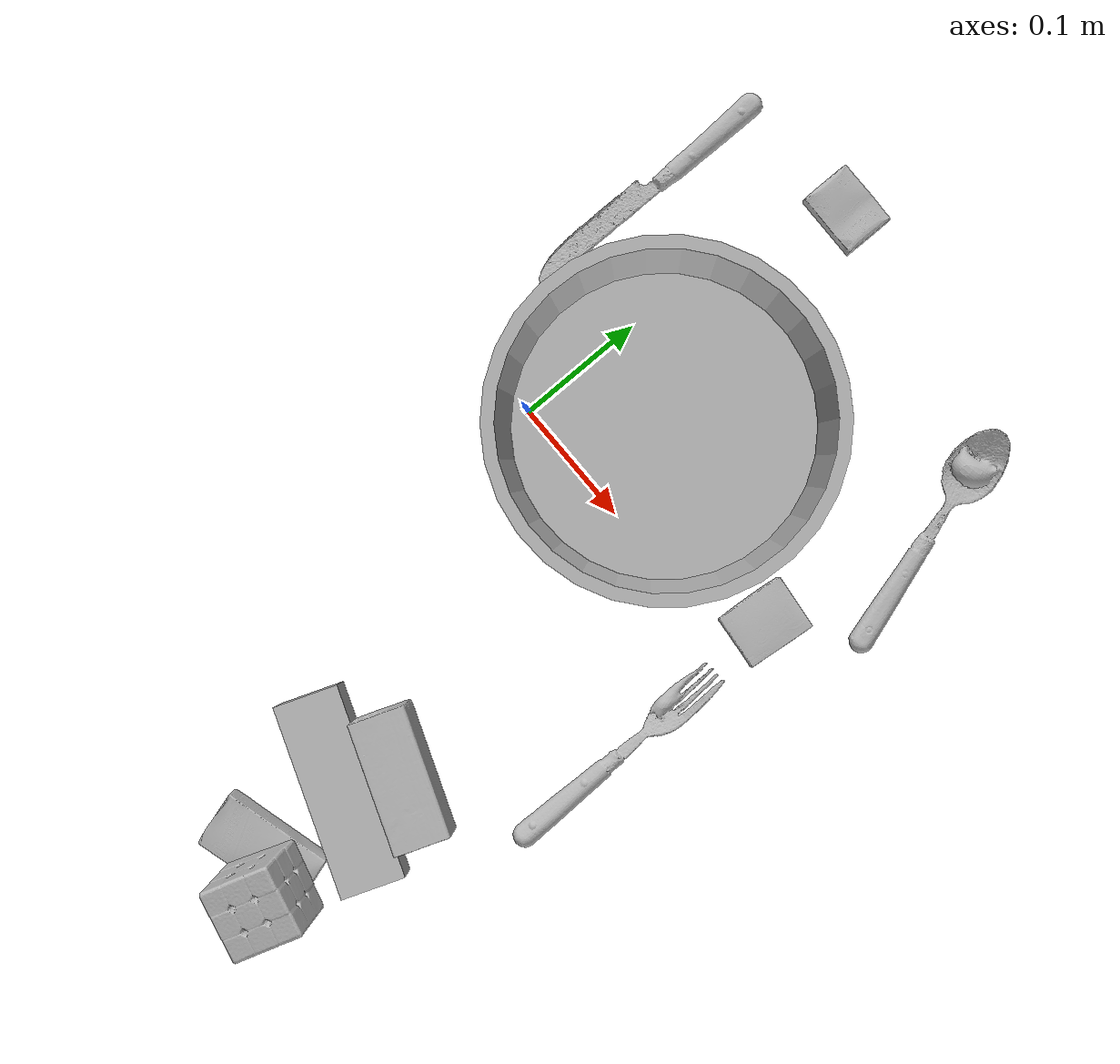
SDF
<sdf version="1.4">
  <world name="default">
    <light name="light1" type="point">
      <pose>0 0 1 0 0 0</pose>
      <diffuse>3 3 3 1</diffuse>
      <specular>3 3 3 1</specular>
    </light>
    <light name="light2" type="point">
      <pose>0 0.5 2 0 0 0</pose>
      <diffuse>1 1 1 1</diffuse>
      <specular>1 1 1 1</specular>
    </light>
    <light name="light3" type="point">
      <pose>0 0.5 2 0 0 0</pose>
      <diffuse>3 3 3 1</diffuse>
      <specular>3 3 3 1</specular>
    </light>
    <scene>
      <ambient>0.7 0.7 0.7</ambient>
    </scene>
    <model name="box11">
      <link name="link_box11">
        <collision name="default">
          <geometry>
            <mesh>
              <uri>model://cracker_box/collision_meshes/collision.obj</uri>
              <scale>0.25 0.25 0.25</scale>
            </mesh>
          </geometry>
          <surface>
            <friction>
              <ode>
                <mu>0.5</mu>
                <mu2>0.5</mu2>
              </ode>
            </friction>
          <contact>
        <ode>
            <max_vel>0</max_vel>
            <min_depth>0.0001</min_depth>
            <kp>1e8</kp>
        </ode>
    </contact></surface>
        </collision>
        <visual name="default">
          <geometry>
            <mesh>
              <uri>model://cracker_box/visual_meshes/visual.dae</uri>
              <scale>0.25 0.25 0.25</scale>
            </mesh>
          </geometry>
        </visual>
        <inertial>
          <mass>0.04448898881673813</mass>
          <pose>0.00023660270380787551 6.358561950037256e-05 -0.000425738311605528 -0.00031620780372907927 -0.011106488668730609 0.002546795468482302</pose>
          <inertia>
            <ixx>7.0725087e-06</ixx>
            <iyy>1.1678099e-05</iyy>
            <izz>1.666572e-05</izz>
            <ixy>0</ixy>
            <ixz>0</ixz>
            <iyz>0</iyz>
          </inertia>
        </inertial>
      </link>
      <pose>0.03674160689115524 0.2779366672039032 0.009096027351915836 -0.014050573635623747 -0.005016586136190467 -3.1413176105859084</pose>
    </model>
    <model name="box12">
      <link name="link_box12">
        <collision name="default">
          <geometry>
            <mesh>
              <uri>model://wood_block/collision_meshes/collision.obj</uri>
              <scale>0.5 0.5 0.5</scale>
            </mesh>
          </geometry>
          <surface>
            <friction>
              <ode>
                <mu>0.5</mu>
                <mu2>0.5</mu2>
              </ode>
            </friction>
          <contact>
        <ode>
            <max_vel>0</max_vel>
            <min_depth>0.0001</min_depth>
            <kp>1e8</kp>
        </ode>
    </contact></surface>
        </collision>
        <visual name="default">
          <geometry>
            <mesh>
              <uri>model://wood_block/visual_meshes/visual.dae</uri>
              <scale>0.5 0.5 0.5</scale>
            </mesh>
          </geometry>
        </visual>
        <inertial>
          <mass>0.30308207869529724</mass>
          <pose>-2.906657982748584e-06 -0.000285404734313488 0.00013204291462898254 -0.05220975528484064 -0.0051926956083073895 -0.006861380255216688</pose>
          <inertia>
            <ixx>0.00010139242</ixx>
            <iyy>0.00032029866</iyy>
            <izz>0.0003191006</izz>
            <ixy>0</ixy>
            <ixz>0</ixz>
            <iyz>0</iyz>
          </inertia>
        </inertial>
      </link>
      <pose>0.1488305926322937 -0.2448122799396515 0.02252749539911747 -0.0158444058825652 -0.00040045469540470416 2.789144028937216</pose>
    </model>
    <model name="box13">
      <link name="link_box13">
        <collision name="default">
          <geometry>
            <mesh>
              <uri>model://pudding_box/collision_meshes/collision.obj</uri>
              <scale>0.5 0.5 0.5</scale>
            </mesh>
          </geometry>
          <surface>
            <friction>
              <ode>
                <mu>0.5</mu>
                <mu2>0.5</mu2>
              </ode>
            </friction>
          <contact>
        <ode>
            <max_vel>0</max_vel>
            <min_depth>0.0001</min_depth>
            <kp>1e8</kp>
        </ode>
    </contact></surface>
        </collision>
        <visual name="default">
          <geometry>
            <mesh>
              <uri>model://pudding_box/visual_meshes/visual.dae</uri>
              <scale>0.5 0.5 0.5</scale>
            </mesh>
          </geometry>
        </visual>
        <inertial>
          <mass>0.06630203872919083</mass>
          <pose>0.00024474109522998333 0.00040339428232982755 -0.00025944141088984907 0.0052131027026664865 -0.006603797821229493 0.02007983447369903</pose>
          <inertia>
            <ixx>1.873776e-05</ixx>
            <iyy>1.2606899e-05</iyy>
            <izz>2.7671198e-05</izz>
            <ixy>0</ixy>
            <ixz>0</ixz>
            <iyz>0</iyz>
          </inertia>
        </inertial>
      </link>
      <pose>0.2335941642522812 0.03461175039410591 0.009862902574241161 0.022348686094502294 -0.011391613090300215 3.041618712242175</pose>
    </model>
    <model name="box21">
      <link name="link_box21">
        <collision name="default">
          <geometry>
            <mesh>
              <uri>model://sugar_box/collision_meshes/collision.obj</uri>
              <scale>0.5 0.5 0.5</scale>
            </mesh>
          </geometry>
          <surface>
            <friction>
              <ode>
                <mu>0.5</mu>
                <mu2>0.5</mu2>
              </ode>
            </friction>
          <contact>
        <ode>
            <max_vel>0</max_vel>
            <min_depth>0.0001</min_depth>
            <kp>1e8</kp>
        </ode>
    </contact></surface>
        </collision>
        <visual name="default">
          <geometry>
            <mesh>
              <uri>model://sugar_box/visual_meshes/visual.dae</uri>
              <scale>0.5 0.5 0.5</scale>
            </mesh>
          </geometry>
        </visual>
        <inertial>
          <mass>0.09398066252470016</mass>
          <pose>0.0005171863595023751 1.924554817378521e-05 -0.00018182402709499002 -0.00040462650409139634 0.0010506636387973133 0.002615378555960767</pose>
          <inertia>
            <ixx>1.9576108e-05</ixx>
            <iyy>6.3274e-05</iyy>
            <izz>7.574653e-05</izz>
            <ixy>0</ixy>
            <ixz>0</ixz>
            <iyz>0</iyz>
          </inertia>
        </inertial>
      </link>
      <pose>0.12434569746255875 -0.35976114869117737 0.012545579113066196 0.11803644091580544 0.0006120078604462732 0.26967281429438866</pose>
    </model>
    <model name="box22">
      <link name="link_box22">
        <collision name="default">
          <geometry>
            <mesh>
              <uri>model://jenga/collision_meshes/collision.obj</uri>
              <scale>1.0 1.0 1.0</scale>
            </mesh>
          </geometry>
          <surface>
            <friction>
              <ode>
                <mu>0.5</mu>
                <mu2>0.5</mu2>
              </ode>
            </friction>
          <contact>
        <ode>
            <max_vel>0</max_vel>
            <min_depth>0.0001</min_depth>
            <kp>1e8</kp>
        </ode>
    </contact></surface>
        </collision>
        <visual name="default">
          <geometry>
            <mesh>
              <uri>model://jenga/visual_meshes/visual.dae</uri>
              <scale>1.0 1.0 1.0</scale>
            </mesh>
          </geometry>
        </visual>
        <inertial>
          <mass>0.2620435655117035</mass>
          <pose>-2.5028555228345795e-07 -0.0001025000965455547 -4.092339804628864e-05 0.0 -7.342154049184251e-07 0.0</pose>
          <inertia>
            <ixx>7.251381e-05</ixx>
            <iyy>0.0004913516</iyy>
            <izz>0.00052455964</izz>
            <ixy>0</ixy>
            <ixz>0</ixz>
            <iyz>0</iyz>
          </inertia>
        </inertial>
      </link>
      <pose>0.12755350768566132 -0.28666505217552185 0.015000001527369022 -4.8764359053925775e-09 -3.467875268791249e-09 -0.3536045412197464</pose>
    </model>
    <model name="box23">
      <link name="link_box23">
        <collision name="default">
          <geometry>
            <mesh>
              <uri>model://rubiks_cube/collision_meshes/collision.obj</uri>
              <scale>1.0 1.0 1.0</scale>
            </mesh>
          </geometry>
          <surface>
            <friction>
              <ode>
                <mu>0.5</mu>
                <mu2>0.5</mu2>
              </ode>
            </friction>
          <contact>
        <ode>
            <max_vel>0</max_vel>
            <min_depth>0.0001</min_depth>
            <kp>1e8</kp>
        </ode>
    </contact></surface>
        </collision>
        <visual name="default">
          <geometry>
            <mesh>
              <uri>model://rubiks_cube/visual_meshes/visual.dae</uri>
              <scale>1.0 1.0 1.0</scale>
            </mesh>
          </geometry>
        </visual>
        <inertial>
          <mass>0.1897622048854828</mass>
          <pose>2.6721043468569405e-05 5.256967051536776e-05 -7.264316082000732e-06 -0.054673156626660294 -0.09814014504853939 -0.034453657529750985</pose>
          <inertia>
            <ixx>0.00010485636</ixx>
            <iyy>0.00010436737</iyy>
            <izz>0.000105725274</izz>
            <ixy>0</ixy>
            <ixz>0</ixz>
            <iyz>0</iyz>
          </inertia>
        </inertial>
      </link>
      <pose>0.15189090371131897 -0.3742820918560028 0.04931964725255966 0.19484419654925625 0.11751228578704426 -0.2638221322704515</pose>
    </model>
    <model name="plate1">
      <link name="link_plate1">
        <collision name="default">
          <geometry>
            <mesh>
              <uri>model://pan_tefal/collision_meshes/collision.obj</uri>
              <scale>1.0 1.0 1.0</scale>
            </mesh>
          </geometry>
          <surface>
            <friction>
              <ode>
                <mu>0.5</mu>
                <mu2>0.5</mu2>
              </ode>
            </friction>
          <contact>
        <ode>
            <max_vel>0</max_vel>
            <min_depth>0.0001</min_depth>
            <kp>1e8</kp>
        </ode>
    </contact></surface>
        </collision>
        <visual name="default">
          <geometry>
            <mesh>
              <uri>model://pan_tefal/visual_meshes/visual.dae</uri>
              <scale>1.0 1.0 1.0</scale>
            </mesh>
          </geometry>
        </visual>
        <inertial>
          <mass>0.8768928050994873</mass>
          <pose>-0.00018002584693022072 3.279091833974235e-05 -0.008514934219419956 0.0008190272128915226 -0.0003301349770144462 -0.3318573305948388</pose>
          <inertia>
            <ixx>0.0060531492</ixx>
            <iyy>0.006092174</iyy>
            <izz>0.011142679</izz>
            <ixy>0</ixy>
            <ixz>0</ixz>
            <iyz>0</iyz>
          </inertia>
        </inertial>
      </link>
      <pose>0.07343929260969162 0.07039029151201248 0.03798534721136093 -0.000377519650577796 -0.00035732086674435625 -1.4139787418137495</pose>
    </model>
    <model name="silverware1">
      <link name="link_silverware1">
        <collision name="default">
          <geometry>
            <mesh>
              <uri>model://spoon/collision_meshes/collision.obj</uri>
              <scale>1.0 1.0 1.0</scale>
            </mesh>
          </geometry>
          <surface>
            <friction>
              <ode>
                <mu>0.5</mu>
                <mu2>0.5</mu2>
              </ode>
            </friction>
          <contact>
        <ode>
            <max_vel>0</max_vel>
            <min_depth>0.0001</min_depth>
            <kp>1e8</kp>
        </ode>
    </contact></surface>
        </collision>
        <visual name="default">
          <geometry>
            <mesh>
              <uri>model://spoon/visual_meshes/visual.dae</uri>
              <scale>1.0 1.0 1.0</scale>
            </mesh>
          </geometry>
        </visual>
        <inertial>
          <mass>0.030811671167612076</mass>
          <pose>-0.005526314955204725 -0.0016034170985221863 -0.0007271655485965312 0.03521832474385929 -0.03906585488360169 0.0061506134218646934</pose>
          <inertia>
            <ixx>1.713795e-06</ixx>
            <iyy>0.000117237374</iyy>
            <izz>0.00011808256</izz>
            <ixy>0</ixy>
            <ixz>0</ixz>
            <iyz>0</iyz>
          </inertia>
        </inertial>
      </link>
      <pose>0.26274675130844116 0.1661929339170456 0.008385260589420795 0.006728841663785744 0.02689300968114406 1.8619966151663987</pose>
    </model>
    <model name="silverware2">
      <link name="link_silverware2">
        <collision name="default">
          <geometry>
            <mesh>
              <uri>model://fork/collision_meshes/collision.obj</uri>
              <scale>1.0 1.0 1.0</scale>
            </mesh>
          </geometry>
          <surface>
            <friction>
              <ode>
                <mu>0.5</mu>
                <mu2>0.5</mu2>
              </ode>
            </friction>
          <contact>
        <ode>
            <max_vel>0</max_vel>
            <min_depth>0.0001</min_depth>
            <kp>1e8</kp>
        </ode>
    </contact></surface>
        </collision>
        <visual name="default">
          <geometry>
            <mesh>
              <uri>model://fork/visual_meshes/visual.dae</uri>
              <scale>1.0 1.0 1.0</scale>
            </mesh>
          </geometry>
        </visual>
        <inertial>
          <mass>0.016358599066734314</mass>
          <pose>-0.029570044949650764 0.00046588238910771906 0.0003218862693756819 -0.013550710307666105 -0.010977838412833367 0.014453905587424366</pose>
          <inertia>
            <ixx>5.7346136e-07</ixx>
            <iyy>4.270759e-05</iyy>
            <izz>4.29641e-05</izz>
            <ixy>0</ixy>
            <ixz>0</ixz>
            <iyz>0</iyz>
          </inertia>
        </inertial>
      </link>
      <pose>0.24116012454032898 -0.115583136677742 0.005676627159118652 -0.17497910691593233 0.025567732527061692 1.5728127886997292</pose>
    </model>
    <model name="silverware3">
      <link name="link_silverware3">
        <collision name="default">
          <geometry>
            <mesh>
              <uri>model://knife/collision_meshes/collision.obj</uri>
              <scale>1.0 1.0 1.0</scale>
            </mesh>
          </geometry>
          <surface>
            <friction>
              <ode>
                <mu>0.5</mu>
                <mu2>0.5</mu2>
              </ode>
            </friction>
          <contact>
        <ode>
            <max_vel>0</max_vel>
            <min_depth>0.0001</min_depth>
            <kp>1e8</kp>
        </ode>
    </contact></surface>
        </collision>
        <visual name="default">
          <geometry>
            <mesh>
              <uri>model://knife/visual_meshes/visual.dae</uri>
              <scale>1.0 1.0 1.0</scale>
            </mesh>
          </geometry>
        </visual>
        <inertial>
          <mass>0.02715744450688362</mass>
          <pose>-0.023785259574651718 0.0015275124460458755 5.062024501967244e-05 0.07304743927496513 0.01724841757037888 -0.007409820832494391</pose>
          <inertia>
            <ixx>7.708383e-07</ixx>
            <iyy>0.00010433449</iyy>
            <izz>0.00010458276</izz>
            <ixy>0</ixy>
            <ixz>0</ixz>
            <iyz>0</iyz>
          </inertia>
        </inertial>
      </link>
      <pose>-0.07094303518533707 0.1750270277261734 0.007946575060486794 -0.023845146509136623 -0.014543235283598743 -1.5738844977068907</pose>
    </model>
  <physics type="ode">
      <max_contacts>50</max_contacts>
      <ode>
        <solver>
          <type>quick</type>
          <iters>75</iters>
        </solver>
        <constraints>
          <contact_max_correcting_vel>0</contact_max_correcting_vel>
          <contact_surface_layer>0</contact_surface_layer>
        </constraints>
      </ode>
    </physics></world>
</sdf>
